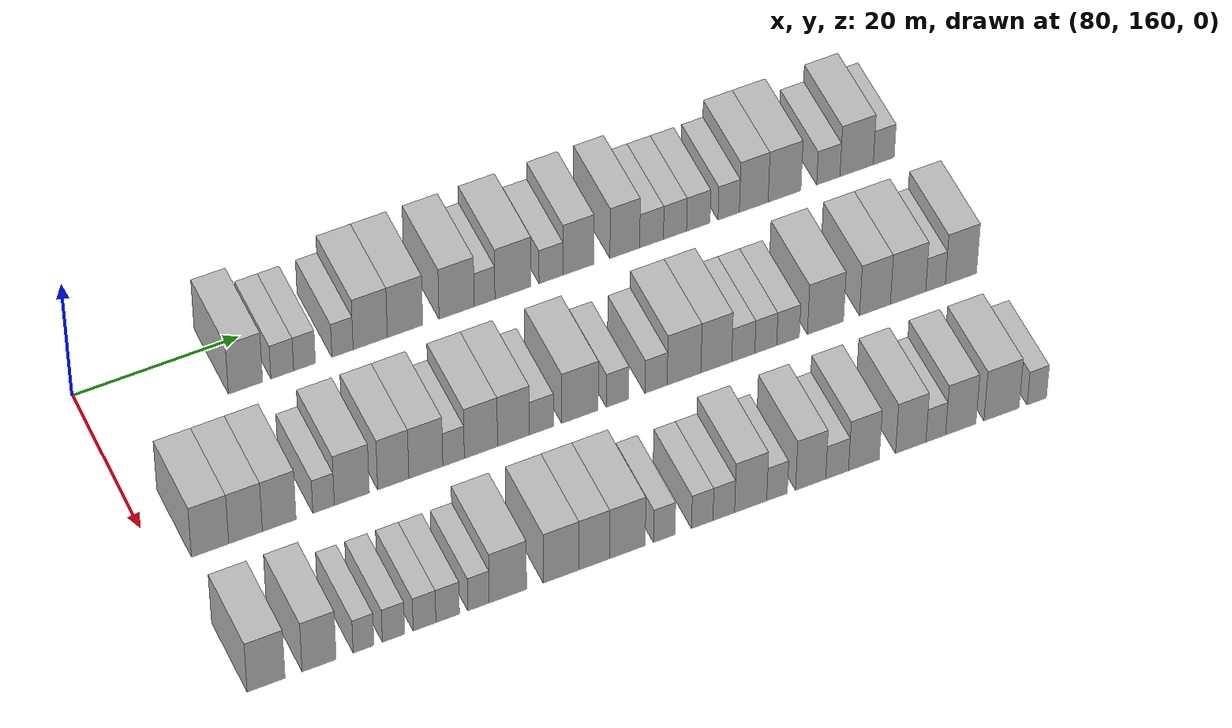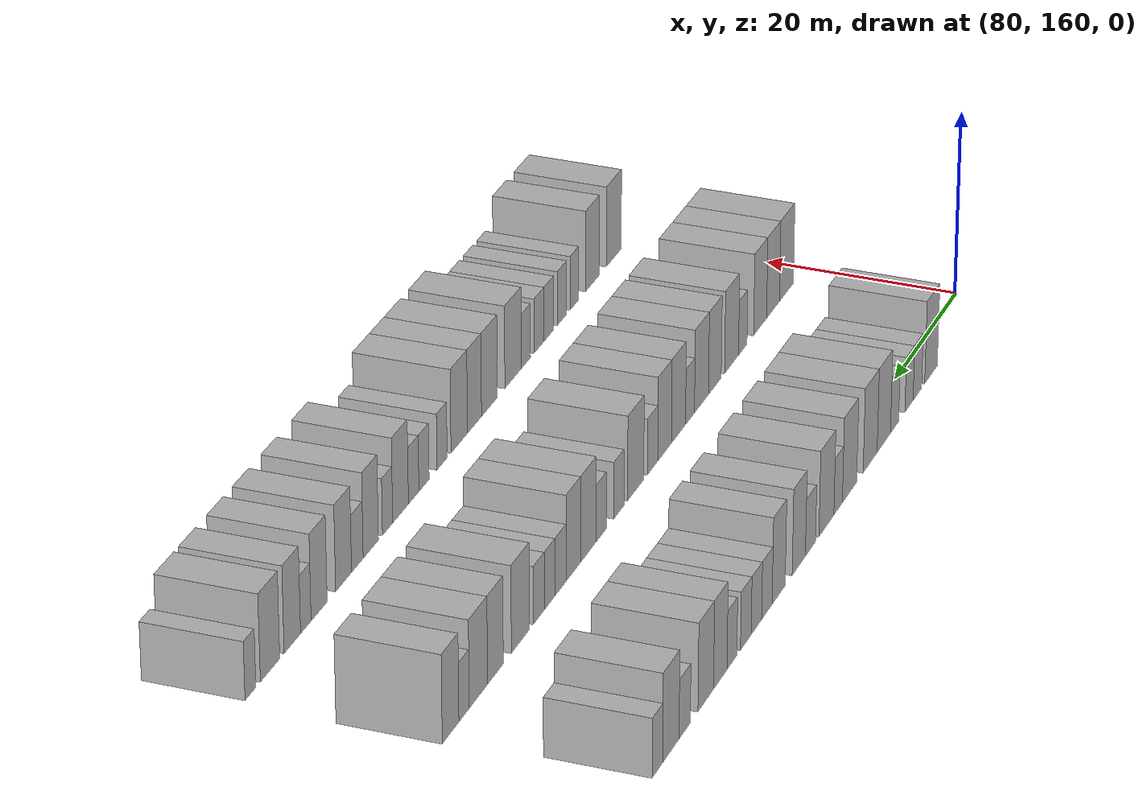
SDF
<sdf version="1.6">
 <world name="default">
  <model name="building_655">
   <static>1</static>
   <pose>82.0000 177.9695 0 0.000000 0.000000 0.000000</pose>
   <link name="link">
    <pose>0 0 4.50 0 0 0</pose>
    <collision name="collision"><geometry><box><size>10.0000 4.1385 9.0000</size></box></geometry></collision>
    <visual name="visual">
     <cast_shadows>0</cast_shadows>
     <geometry><box><size>10.0000 4.1385 9.0000</size></box></geometry>
     <material>
      <script>
       <uri>model://HANNAS_wall/materials/scripts</uri>
       <uri>model://HANNAS_wall/materials/textures</uri>
       <name>vrc/HANNAS_wall</name>
      </script>
     </material>
    </visual>
   </link>
  </model>
  <model name="building_656">
   <static>1</static>
   <pose>82.0000 182.4189 0 0.000000 0.000000 0.000000</pose>
   <link name="link">
    <pose>0 0 3.00 0 0 0</pose>
    <collision name="collision"><geometry><box><size>10.0000 2.7604 6.0000</size></box></geometry></collision>
    <visual name="visual">
     <cast_shadows>0</cast_shadows>
     <geometry><box><size>10.0000 2.7604 6.0000</size></box></geometry>
     <material>
      <script>
       <uri>model://HANNAS_wall/materials/scripts</uri>
       <uri>model://HANNAS_wall/materials/textures</uri>
       <name>vrc/HANNAS_wall</name>
      </script>
     </material>
    </visual>
   </link>
  </model>
  <model name="building_657">
   <static>1</static>
   <pose>82.0000 185.1187 0 0.000000 0.000000 0.000000</pose>
   <link name="link">
    <pose>0 0 3.00 0 0 0</pose>
    <collision name="collision"><geometry><box><size>10.0000 2.6391 6.0000</size></box></geometry></collision>
    <visual name="visual">
     <cast_shadows>0</cast_shadows>
     <geometry><box><size>10.0000 2.6391 6.0000</size></box></geometry>
     <material>
      <script>
       <uri>model://HANNAS_wall/materials/scripts</uri>
       <uri>model://HANNAS_wall/materials/textures</uri>
       <name>vrc/HANNAS_wall</name>
      </script>
     </material>
    </visual>
   </link>
  </model>
  <model name="building_658">
   <static>1</static>
   <pose>82.0000 189.7355 0 0.000000 0.000000 0.000000</pose>
   <link name="link">
    <pose>0 0 3.00 0 0 0</pose>
    <collision name="collision"><geometry><box><size>10.0000 2.5944 6.0000</size></box></geometry></collision>
    <visual name="visual">
     <cast_shadows>0</cast_shadows>
     <geometry><box><size>10.0000 2.5944 6.0000</size></box></geometry>
     <material>
      <script>
       <uri>model://HANNAS_wall/materials/scripts</uri>
       <uri>model://HANNAS_wall/materials/textures</uri>
       <name>vrc/HANNAS_wall</name>
      </script>
     </material>
    </visual>
   </link>
  </model>
  <model name="building_659">
   <static>1</static>
   <pose>82.0000 193.1261 0 0.000000 0.000000 0.000000</pose>
   <link name="link">
    <pose>0 0 4.50 0 0 0</pose>
    <collision name="collision"><geometry><box><size>10.0000 4.1868 9.0000</size></box></geometry></collision>
    <visual name="visual">
     <cast_shadows>0</cast_shadows>
     <geometry><box><size>10.0000 4.1868 9.0000</size></box></geometry>
     <material>
      <script>
       <uri>model://HANNAS_wall/materials/scripts</uri>
       <uri>model://HANNAS_wall/materials/textures</uri>
       <name>vrc/HANNAS_wall</name>
      </script>
     </material>
    </visual>
   </link>
  </model>
  <model name="building_660">
   <static>1</static>
   <pose>82.0000 197.3798 0 0.000000 0.000000 0.000000</pose>
   <link name="link">
    <pose>0 0 4.50 0 0 0</pose>
    <collision name="collision"><geometry><box><size>10.0000 4.3207 9.0000</size></box></geometry></collision>
    <visual name="visual">
     <cast_shadows>0</cast_shadows>
     <geometry><box><size>10.0000 4.3207 9.0000</size></box></geometry>
     <material>
      <script>
       <uri>model://HANNAS_wall/materials/scripts</uri>
       <uri>model://HANNAS_wall/materials/textures</uri>
       <name>vrc/HANNAS_wall</name>
      </script>
     </material>
    </visual>
   </link>
  </model>
  <model name="building_661">
   <static>1</static>
   <pose>82.0000 203.6996 0 0.000000 0.000000 0.000000</pose>
   <link name="link">
    <pose>0 0 4.50 0 0 0</pose>
    <collision name="collision"><geometry><box><size>10.0000 4.3188 9.0000</size></box></geometry></collision>
    <visual name="visual">
     <cast_shadows>0</cast_shadows>
     <geometry><box><size>10.0000 4.3188 9.0000</size></box></geometry>
     <material>
      <script>
       <uri>model://HANNAS_wall/materials/scripts</uri>
       <uri>model://HANNAS_wall/materials/textures</uri>
       <name>vrc/HANNAS_wall</name>
      </script>
     </material>
    </visual>
   </link>
  </model>
  <model name="building_662">
   <static>1</static>
   <pose>82.0000 207.1368 0 0.000000 0.000000 0.000000</pose>
   <link name="link">
    <pose>0 0 3.00 0 0 0</pose>
    <collision name="collision"><geometry><box><size>10.0000 2.5557 6.0000</size></box></geometry></collision>
    <visual name="visual">
     <cast_shadows>0</cast_shadows>
     <geometry><box><size>10.0000 2.5557 6.0000</size></box></geometry>
     <material>
      <script>
       <uri>model://HANNAS_wall/materials/scripts</uri>
       <uri>model://HANNAS_wall/materials/textures</uri>
       <name>vrc/HANNAS_wall</name>
      </script>
     </material>
    </visual>
   </link>
  </model>
  <model name="building_663">
   <static>1</static>
   <pose>82.0000 210.6408 0 0.000000 0.000000 0.000000</pose>
   <link name="link">
    <pose>0 0 4.50 0 0 0</pose>
    <collision name="collision"><geometry><box><size>10.0000 4.4524 9.0000</size></box></geometry></collision>
    <visual name="visual">
     <cast_shadows>0</cast_shadows>
     <geometry><box><size>10.0000 4.4524 9.0000</size></box></geometry>
     <material>
      <script>
       <uri>model://HANNAS_wall/materials/scripts</uri>
       <uri>model://HANNAS_wall/materials/textures</uri>
       <name>vrc/HANNAS_wall</name>
      </script>
     </material>
    </visual>
   </link>
  </model>
  <model name="building_664">
   <static>1</static>
   <pose>82.0000 215.3456 0 0.000000 0.000000 0.000000</pose>
   <link name="link">
    <pose>0 0 3.00 0 0 0</pose>
    <collision name="collision"><geometry><box><size>10.0000 2.9572 6.0000</size></box></geometry></collision>
    <visual name="visual">
     <cast_shadows>0</cast_shadows>
     <geometry><box><size>10.0000 2.9572 6.0000</size></box></geometry>
     <material>
      <script>
       <uri>model://HANNAS_wall/materials/scripts</uri>
       <uri>model://HANNAS_wall/materials/textures</uri>
       <name>vrc/HANNAS_wall</name>
      </script>
     </material>
    </visual>
   </link>
  </model>
  <model name="building_665">
   <static>1</static>
   <pose>82.0000 218.7433 0 0.000000 0.000000 0.000000</pose>
   <link name="link">
    <pose>0 0 4.50 0 0 0</pose>
    <collision name="collision"><geometry><box><size>10.0000 3.8381 9.0000</size></box></geometry></collision>
    <visual name="visual">
     <cast_shadows>0</cast_shadows>
     <geometry><box><size>10.0000 3.8381 9.0000</size></box></geometry>
     <material>
      <script>
       <uri>model://HANNAS_wall/materials/scripts</uri>
       <uri>model://HANNAS_wall/materials/textures</uri>
       <name>vrc/HANNAS_wall</name>
      </script>
     </material>
    </visual>
   </link>
  </model>
  <model name="building_666">
   <static>1</static>
   <pose>82.0000 224.5150 0 0.000000 0.000000 0.000000</pose>
   <link name="link">
    <pose>0 0 4.50 0 0 0</pose>
    <collision name="collision"><geometry><box><size>10.0000 3.7053 9.0000</size></box></geometry></collision>
    <visual name="visual">
     <cast_shadows>0</cast_shadows>
     <geometry><box><size>10.0000 3.7053 9.0000</size></box></geometry>
     <material>
      <script>
       <uri>model://HANNAS_wall/materials/scripts</uri>
       <uri>model://HANNAS_wall/materials/textures</uri>
       <name>vrc/HANNAS_wall</name>
      </script>
     </material>
    </visual>
   </link>
  </model>
  <model name="building_667">
   <static>1</static>
   <pose>82.0000 227.8535 0 0.000000 0.000000 0.000000</pose>
   <link name="link">
    <pose>0 0 3.00 0 0 0</pose>
    <collision name="collision"><geometry><box><size>10.0000 2.9717 6.0000</size></box></geometry></collision>
    <visual name="visual">
     <cast_shadows>0</cast_shadows>
     <geometry><box><size>10.0000 2.9717 6.0000</size></box></geometry>
     <material>
      <script>
       <uri>model://HANNAS_wall/materials/scripts</uri>
       <uri>model://HANNAS_wall/materials/textures</uri>
       <name>vrc/HANNAS_wall</name>
      </script>
     </material>
    </visual>
   </link>
  </model>
  <model name="building_668">
   <static>1</static>
   <pose>82.0000 230.7894 0 0.000000 0.000000 0.000000</pose>
   <link name="link">
    <pose>0 0 3.00 0 0 0</pose>
    <collision name="collision"><geometry><box><size>10.0000 2.9001 6.0000</size></box></geometry></collision>
    <visual name="visual">
     <cast_shadows>0</cast_shadows>
     <geometry><box><size>10.0000 2.9001 6.0000</size></box></geometry>
     <material>
      <script>
       <uri>model://HANNAS_wall/materials/scripts</uri>
       <uri>model://HANNAS_wall/materials/textures</uri>
       <name>vrc/HANNAS_wall</name>
      </script>
     </material>
    </visual>
   </link>
  </model>
  <model name="building_669">
   <static>1</static>
   <pose>82.0000 233.7119 0 0.000000 0.000000 0.000000</pose>
   <link name="link">
    <pose>0 0 3.00 0 0 0</pose>
    <collision name="collision"><geometry><box><size>10.0000 2.9449 6.0000</size></box></geometry></collision>
    <visual name="visual">
     <cast_shadows>0</cast_shadows>
     <geometry><box><size>10.0000 2.9449 6.0000</size></box></geometry>
     <material>
      <script>
       <uri>model://HANNAS_wall/materials/scripts</uri>
       <uri>model://HANNAS_wall/materials/textures</uri>
       <name>vrc/HANNAS_wall</name>
      </script>
     </material>
    </visual>
   </link>
  </model>
  <model name="building_670">
   <static>1</static>
   <pose>82.0000 237.5226 0 0.000000 0.000000 0.000000</pose>
   <link name="link">
    <pose>0 0 3.00 0 0 0</pose>
    <collision name="collision"><geometry><box><size>10.0000 2.6765 6.0000</size></box></geometry></collision>
    <visual name="visual">
     <cast_shadows>0</cast_shadows>
     <geometry><box><size>10.0000 2.6765 6.0000</size></box></geometry>
     <material>
      <script>
       <uri>model://HANNAS_wall/materials/scripts</uri>
       <uri>model://HANNAS_wall/materials/textures</uri>
       <name>vrc/HANNAS_wall</name>
      </script>
     </material>
    </visual>
   </link>
  </model>
  <model name="building_671">
   <static>1</static>
   <pose>82.0000 240.6766 0 0.000000 0.000000 0.000000</pose>
   <link name="link">
    <pose>0 0 4.50 0 0 0</pose>
    <collision name="collision"><geometry><box><size>10.0000 3.6316 9.0000</size></box></geometry></collision>
    <visual name="visual">
     <cast_shadows>0</cast_shadows>
     <geometry><box><size>10.0000 3.6316 9.0000</size></box></geometry>
     <material>
      <script>
       <uri>model://HANNAS_wall/materials/scripts</uri>
       <uri>model://HANNAS_wall/materials/textures</uri>
       <name>vrc/HANNAS_wall</name>
      </script>
     </material>
    </visual>
   </link>
  </model>
  <model name="building_672">
   <static>1</static>
   <pose>82.0000 244.5646 0 0.000000 0.000000 0.000000</pose>
   <link name="link">
    <pose>0 0 4.50 0 0 0</pose>
    <collision name="collision"><geometry><box><size>10.0000 4.1444 9.0000</size></box></geometry></collision>
    <visual name="visual">
     <cast_shadows>0</cast_shadows>
     <geometry><box><size>10.0000 4.1444 9.0000</size></box></geometry>
     <material>
      <script>
       <uri>model://HANNAS_wall/materials/scripts</uri>
       <uri>model://HANNAS_wall/materials/textures</uri>
       <name>vrc/HANNAS_wall</name>
      </script>
     </material>
    </visual>
   </link>
  </model>
  <model name="building_673">
   <static>1</static>
   <pose>82.0000 250.1136 0 0.000000 0.000000 0.000000</pose>
   <link name="link">
    <pose>0 0 3.00 0 0 0</pose>
    <collision name="collision"><geometry><box><size>10.0000 2.9536 6.0000</size></box></geometry></collision>
    <visual name="visual">
     <cast_shadows>0</cast_shadows>
     <geometry><box><size>10.0000 2.9536 6.0000</size></box></geometry>
     <material>
      <script>
       <uri>model://HANNAS_wall/materials/scripts</uri>
       <uri>model://HANNAS_wall/materials/textures</uri>
       <name>vrc/HANNAS_wall</name>
      </script>
     </material>
    </visual>
   </link>
  </model>
  <model name="building_674">
   <static>1</static>
   <pose>82.0000 253.7051 0 0.000000 0.000000 0.000000</pose>
   <link name="link">
    <pose>0 0 4.50 0 0 0</pose>
    <collision name="collision"><geometry><box><size>10.0000 4.2295 9.0000</size></box></geometry></collision>
    <visual name="visual">
     <cast_shadows>0</cast_shadows>
     <geometry><box><size>10.0000 4.2295 9.0000</size></box></geometry>
     <material>
      <script>
       <uri>model://HANNAS_wall/materials/scripts</uri>
       <uri>model://HANNAS_wall/materials/textures</uri>
       <name>vrc/HANNAS_wall</name>
      </script>
     </material>
    </visual>
   </link>
  </model>
  <model name="building_675">
   <static>1</static>
   <pose>82.0000 257.1515 0 0.000000 0.000000 0.000000</pose>
   <link name="link">
    <pose>0 0 3.00 0 0 0</pose>
    <collision name="collision"><geometry><box><size>10.0000 2.6634 6.0000</size></box></geometry></collision>
    <visual name="visual">
     <cast_shadows>0</cast_shadows>
     <geometry><box><size>10.0000 2.6634 6.0000</size></box></geometry>
     <material>
      <script>
       <uri>model://HANNAS_wall/materials/scripts</uri>
       <uri>model://HANNAS_wall/materials/textures</uri>
       <name>vrc/HANNAS_wall</name>
      </script>
     </material>
    </visual>
   </link>
  </model>
  <model name="building_824">
   <static>1</static>
   <pose>101.0000 165.8462 0 0.000000 0.000000 0.000000</pose>
   <link name="link">
    <pose>0 0 4.50 0 0 0</pose>
    <collision name="collision"><geometry><box><size>10.0000 4.4173 9.0000</size></box></geometry></collision>
    <visual name="visual">
     <cast_shadows>0</cast_shadows>
     <geometry><box><size>10.0000 4.4173 9.0000</size></box></geometry>
     <material>
      <script>
       <uri>model://HANNAS_wall/materials/scripts</uri>
       <uri>model://HANNAS_wall/materials/textures</uri>
       <name>vrc/HANNAS_wall</name>
      </script>
     </material>
    </visual>
   </link>
  </model>
  <model name="building_825">
   <static>1</static>
   <pose>101.0000 170.0521 0 0.000000 0.000000 0.000000</pose>
   <link name="link">
    <pose>0 0 4.50 0 0 0</pose>
    <collision name="collision"><geometry><box><size>10.0000 3.9946 9.0000</size></box></geometry></collision>
    <visual name="visual">
     <cast_shadows>0</cast_shadows>
     <geometry><box><size>10.0000 3.9946 9.0000</size></box></geometry>
     <material>
      <script>
       <uri>model://HANNAS_wall/materials/scripts</uri>
       <uri>model://HANNAS_wall/materials/textures</uri>
       <name>vrc/HANNAS_wall</name>
      </script>
     </material>
    </visual>
   </link>
  </model>
  <model name="building_826">
   <static>1</static>
   <pose>101.0000 174.0549 0 0.000000 0.000000 0.000000</pose>
   <link name="link">
    <pose>0 0 4.50 0 0 0</pose>
    <collision name="collision"><geometry><box><size>10.0000 4.0111 9.0000</size></box></geometry></collision>
    <visual name="visual">
     <cast_shadows>0</cast_shadows>
     <geometry><box><size>10.0000 4.0111 9.0000</size></box></geometry>
     <material>
      <script>
       <uri>model://HANNAS_wall/materials/scripts</uri>
       <uri>model://HANNAS_wall/materials/textures</uri>
       <name>vrc/HANNAS_wall</name>
      </script>
     </material>
    </visual>
   </link>
  </model>
  <model name="building_827">
   <static>1</static>
   <pose>101.0000 179.3477 0 0.000000 0.000000 0.000000</pose>
   <link name="link">
    <pose>0 0 3.00 0 0 0</pose>
    <collision name="collision"><geometry><box><size>10.0000 2.5744 6.0000</size></box></geometry></collision>
    <visual name="visual">
     <cast_shadows>0</cast_shadows>
     <geometry><box><size>10.0000 2.5744 6.0000</size></box></geometry>
     <material>
      <script>
       <uri>model://HANNAS_wall/materials/scripts</uri>
       <uri>model://HANNAS_wall/materials/textures</uri>
       <name>vrc/HANNAS_wall</name>
      </script>
     </material>
    </visual>
   </link>
  </model>
  <model name="building_828">
   <static>1</static>
   <pose>101.0000 182.7299 0 0.000000 0.000000 0.000000</pose>
   <link name="link">
    <pose>0 0 4.50 0 0 0</pose>
    <collision name="collision"><geometry><box><size>10.0000 4.1900 9.0000</size></box></geometry></collision>
    <visual name="visual">
     <cast_shadows>0</cast_shadows>
     <geometry><box><size>10.0000 4.1900 9.0000</size></box></geometry>
     <material>
      <script>
       <uri>model://HANNAS_wall/materials/scripts</uri>
       <uri>model://HANNAS_wall/materials/textures</uri>
       <name>vrc/HANNAS_wall</name>
      </script>
     </material>
    </visual>
   </link>
  </model>
  <model name="building_829">
   <static>1</static>
   <pose>101.0000 187.6996 0 0.000000 0.000000 0.000000</pose>
   <link name="link">
    <pose>0 0 4.50 0 0 0</pose>
    <collision name="collision"><geometry><box><size>10.0000 3.7494 9.0000</size></box></geometry></collision>
    <visual name="visual">
     <cast_shadows>0</cast_shadows>
     <geometry><box><size>10.0000 3.7494 9.0000</size></box></geometry>
     <material>
      <script>
       <uri>model://HANNAS_wall/materials/scripts</uri>
       <uri>model://HANNAS_wall/materials/textures</uri>
       <name>vrc/HANNAS_wall</name>
      </script>
     </material>
    </visual>
   </link>
  </model>
  <model name="building_830">
   <static>1</static>
   <pose>101.0000 191.6218 0 0.000000 0.000000 0.000000</pose>
   <link name="link">
    <pose>0 0 4.50 0 0 0</pose>
    <collision name="collision"><geometry><box><size>10.0000 4.0949 9.0000</size></box></geometry></collision>
    <visual name="visual">
     <cast_shadows>0</cast_shadows>
     <geometry><box><size>10.0000 4.0949 9.0000</size></box></geometry>
     <material>
      <script>
       <uri>model://HANNAS_wall/materials/scripts</uri>
       <uri>model://HANNAS_wall/materials/textures</uri>
       <name>vrc/HANNAS_wall</name>
      </script>
     </material>
    </visual>
   </link>
  </model>
  <model name="building_831">
   <static>1</static>
   <pose>101.0000 194.9651 0 0.000000 0.000000 0.000000</pose>
   <link name="link">
    <pose>0 0 3.00 0 0 0</pose>
    <collision name="collision"><geometry><box><size>10.0000 2.5917 6.0000</size></box></geometry></collision>
    <visual name="visual">
     <cast_shadows>0</cast_shadows>
     <geometry><box><size>10.0000 2.5917 6.0000</size></box></geometry>
     <material>
      <script>
       <uri>model://HANNAS_wall/materials/scripts</uri>
       <uri>model://HANNAS_wall/materials/textures</uri>
       <name>vrc/HANNAS_wall</name>
      </script>
     </material>
    </visual>
   </link>
  </model>
  <model name="building_832">
   <static>1</static>
   <pose>101.0000 198.2716 0 0.000000 0.000000 0.000000</pose>
   <link name="link">
    <pose>0 0 4.50 0 0 0</pose>
    <collision name="collision"><geometry><box><size>10.0000 4.0214 9.0000</size></box></geometry></collision>
    <visual name="visual">
     <cast_shadows>0</cast_shadows>
     <geometry><box><size>10.0000 4.0214 9.0000</size></box></geometry>
     <material>
      <script>
       <uri>model://HANNAS_wall/materials/scripts</uri>
       <uri>model://HANNAS_wall/materials/textures</uri>
       <name>vrc/HANNAS_wall</name>
      </script>
     </material>
    </visual>
   </link>
  </model>
  <model name="building_833">
   <static>1</static>
   <pose>101.0000 202.2206 0 0.000000 0.000000 0.000000</pose>
   <link name="link">
    <pose>0 0 4.50 0 0 0</pose>
    <collision name="collision"><geometry><box><size>10.0000 3.8765 9.0000</size></box></geometry></collision>
    <visual name="visual">
     <cast_shadows>0</cast_shadows>
     <geometry><box><size>10.0000 3.8765 9.0000</size></box></geometry>
     <material>
      <script>
       <uri>model://HANNAS_wall/materials/scripts</uri>
       <uri>model://HANNAS_wall/materials/textures</uri>
       <name>vrc/HANNAS_wall</name>
      </script>
     </material>
    </visual>
   </link>
  </model>
  <model name="building_834">
   <static>1</static>
   <pose>101.0000 205.6199 0 0.000000 0.000000 0.000000</pose>
   <link name="link">
    <pose>0 0 3.00 0 0 0</pose>
    <collision name="collision"><geometry><box><size>10.0000 2.9221 6.0000</size></box></geometry></collision>
    <visual name="visual">
     <cast_shadows>0</cast_shadows>
     <geometry><box><size>10.0000 2.9221 6.0000</size></box></geometry>
     <material>
      <script>
       <uri>model://HANNAS_wall/materials/scripts</uri>
       <uri>model://HANNAS_wall/materials/textures</uri>
       <name>vrc/HANNAS_wall</name>
      </script>
     </material>
    </visual>
   </link>
  </model>
  <model name="building_835">
   <static>1</static>
   <pose>101.0000 210.3074 0 0.000000 0.000000 0.000000</pose>
   <link name="link">
    <pose>0 0 4.50 0 0 0</pose>
    <collision name="collision"><geometry><box><size>10.0000 4.4530 9.0000</size></box></geometry></collision>
    <visual name="visual">
     <cast_shadows>0</cast_shadows>
     <geometry><box><size>10.0000 4.4530 9.0000</size></box></geometry>
     <material>
      <script>
       <uri>model://HANNAS_wall/materials/scripts</uri>
       <uri>model://HANNAS_wall/materials/textures</uri>
       <name>vrc/HANNAS_wall</name>
      </script>
     </material>
    </visual>
   </link>
  </model>
  <model name="building_836">
   <static>1</static>
   <pose>101.0000 214.9007 0 0.000000 0.000000 0.000000</pose>
   <link name="link">
    <pose>0 0 3.00 0 0 0</pose>
    <collision name="collision"><geometry><box><size>10.0000 2.7336 6.0000</size></box></geometry></collision>
    <visual name="visual">
     <cast_shadows>0</cast_shadows>
     <geometry><box><size>10.0000 2.7336 6.0000</size></box></geometry>
     <material>
      <script>
       <uri>model://HANNAS_wall/materials/scripts</uri>
       <uri>model://HANNAS_wall/materials/textures</uri>
       <name>vrc/HANNAS_wall</name>
      </script>
     </material>
    </visual>
   </link>
  </model>
  <model name="building_837">
   <static>1</static>
   <pose>101.0000 219.6294 0 0.000000 0.000000 0.000000</pose>
   <link name="link">
    <pose>0 0 3.00 0 0 0</pose>
    <collision name="collision"><geometry><box><size>10.0000 2.7238 6.0000</size></box></geometry></collision>
    <visual name="visual">
     <cast_shadows>0</cast_shadows>
     <geometry><box><size>10.0000 2.7238 6.0000</size></box></geometry>
     <material>
      <script>
       <uri>model://HANNAS_wall/materials/scripts</uri>
       <uri>model://HANNAS_wall/materials/textures</uri>
       <name>vrc/HANNAS_wall</name>
      </script>
     </material>
    </visual>
   </link>
  </model>
  <model name="building_838">
   <static>1</static>
   <pose>101.0000 223.0688 0 0.000000 0.000000 0.000000</pose>
   <link name="link">
    <pose>0 0 4.50 0 0 0</pose>
    <collision name="collision"><geometry><box><size>10.0000 4.1552 9.0000</size></box></geometry></collision>
    <visual name="visual">
     <cast_shadows>0</cast_shadows>
     <geometry><box><size>10.0000 4.1552 9.0000</size></box></geometry>
     <material>
      <script>
       <uri>model://HANNAS_wall/materials/scripts</uri>
       <uri>model://HANNAS_wall/materials/textures</uri>
       <name>vrc/HANNAS_wall</name>
      </script>
     </material>
    </visual>
   </link>
  </model>
  <model name="building_839">
   <static>1</static>
   <pose>101.0000 227.0503 0 0.000000 0.000000 0.000000</pose>
   <link name="link">
    <pose>0 0 4.50 0 0 0</pose>
    <collision name="collision"><geometry><box><size>10.0000 3.8078 9.0000</size></box></geometry></collision>
    <visual name="visual">
     <cast_shadows>0</cast_shadows>
     <geometry><box><size>10.0000 3.8078 9.0000</size></box></geometry>
     <material>
      <script>
       <uri>model://HANNAS_wall/materials/scripts</uri>
       <uri>model://HANNAS_wall/materials/textures</uri>
       <name>vrc/HANNAS_wall</name>
      </script>
     </material>
    </visual>
   </link>
  </model>
  <model name="building_840">
   <static>1</static>
   <pose>101.0000 230.3859 0 0.000000 0.000000 0.000000</pose>
   <link name="link">
    <pose>0 0 3.00 0 0 0</pose>
    <collision name="collision"><geometry><box><size>10.0000 2.8635 6.0000</size></box></geometry></collision>
    <visual name="visual">
     <cast_shadows>0</cast_shadows>
     <geometry><box><size>10.0000 2.8635 6.0000</size></box></geometry>
     <material>
      <script>
       <uri>model://HANNAS_wall/materials/scripts</uri>
       <uri>model://HANNAS_wall/materials/textures</uri>
       <name>vrc/HANNAS_wall</name>
      </script>
     </material>
    </visual>
   </link>
  </model>
  <model name="building_841">
   <static>1</static>
   <pose>101.0000 233.1712 0 0.000000 0.000000 0.000000</pose>
   <link name="link">
    <pose>0 0 3.00 0 0 0</pose>
    <collision name="collision"><geometry><box><size>10.0000 2.7071 6.0000</size></box></geometry></collision>
    <visual name="visual">
     <cast_shadows>0</cast_shadows>
     <geometry><box><size>10.0000 2.7071 6.0000</size></box></geometry>
     <material>
      <script>
       <uri>model://HANNAS_wall/materials/scripts</uri>
       <uri>model://HANNAS_wall/materials/textures</uri>
       <name>vrc/HANNAS_wall</name>
      </script>
     </material>
    </visual>
   </link>
  </model>
  <model name="building_842">
   <static>1</static>
   <pose>101.0000 235.9362 0 0.000000 0.000000 0.000000</pose>
   <link name="link">
    <pose>0 0 3.00 0 0 0</pose>
    <collision name="collision"><geometry><box><size>10.0000 2.8228 6.0000</size></box></geometry></collision>
    <visual name="visual">
     <cast_shadows>0</cast_shadows>
     <geometry><box><size>10.0000 2.8228 6.0000</size></box></geometry>
     <material>
      <script>
       <uri>model://HANNAS_wall/materials/scripts</uri>
       <uri>model://HANNAS_wall/materials/textures</uri>
       <name>vrc/HANNAS_wall</name>
      </script>
     </material>
    </visual>
   </link>
  </model>
  <model name="building_843">
   <static>1</static>
   <pose>101.0000 240.5971 0 0.000000 0.000000 0.000000</pose>
   <link name="link">
    <pose>0 0 4.50 0 0 0</pose>
    <collision name="collision"><geometry><box><size>10.0000 4.4989 9.0000</size></box></geometry></collision>
    <visual name="visual">
     <cast_shadows>0</cast_shadows>
     <geometry><box><size>10.0000 4.4989 9.0000</size></box></geometry>
     <material>
      <script>
       <uri>model://HANNAS_wall/materials/scripts</uri>
       <uri>model://HANNAS_wall/materials/textures</uri>
       <name>vrc/HANNAS_wall</name>
      </script>
     </material>
    </visual>
   </link>
  </model>
  <model name="building_844">
   <static>1</static>
   <pose>101.0000 246.7779 0 0.000000 0.000000 0.000000</pose>
   <link name="link">
    <pose>0 0 4.50 0 0 0</pose>
    <collision name="collision"><geometry><box><size>10.0000 3.8628 9.0000</size></box></geometry></collision>
    <visual name="visual">
     <cast_shadows>0</cast_shadows>
     <geometry><box><size>10.0000 3.8628 9.0000</size></box></geometry>
     <material>
      <script>
       <uri>model://HANNAS_wall/materials/scripts</uri>
       <uri>model://HANNAS_wall/materials/textures</uri>
       <name>vrc/HANNAS_wall</name>
      </script>
     </material>
    </visual>
   </link>
  </model>
  <model name="building_845">
   <static>1</static>
   <pose>101.0000 250.9268 0 0.000000 0.000000 0.000000</pose>
   <link name="link">
    <pose>0 0 4.50 0 0 0</pose>
    <collision name="collision"><geometry><box><size>10.0000 4.4350 9.0000</size></box></geometry></collision>
    <visual name="visual">
     <cast_shadows>0</cast_shadows>
     <geometry><box><size>10.0000 4.4350 9.0000</size></box></geometry>
     <material>
      <script>
       <uri>model://HANNAS_wall/materials/scripts</uri>
       <uri>model://HANNAS_wall/materials/textures</uri>
       <name>vrc/HANNAS_wall</name>
      </script>
     </material>
    </visual>
   </link>
  </model>
  <model name="building_846">
   <static>1</static>
   <pose>101.0000 254.3762 0 0.000000 0.000000 0.000000</pose>
   <link name="link">
    <pose>0 0 3.00 0 0 0</pose>
    <collision name="collision"><geometry><box><size>10.0000 2.4638 6.0000</size></box></geometry></collision>
    <visual name="visual">
     <cast_shadows>0</cast_shadows>
     <geometry><box><size>10.0000 2.4638 6.0000</size></box></geometry>
     <material>
      <script>
       <uri>model://HANNAS_wall/materials/scripts</uri>
       <uri>model://HANNAS_wall/materials/textures</uri>
       <name>vrc/HANNAS_wall</name>
      </script>
     </material>
    </visual>
   </link>
  </model>
  <model name="building_847">
   <static>1</static>
   <pose>101.0000 257.5766 0 0.000000 0.000000 0.000000</pose>
   <link name="link">
    <pose>0 0 4.50 0 0 0</pose>
    <collision name="collision"><geometry><box><size>10.0000 3.9369 9.0000</size></box></geometry></collision>
    <visual name="visual">
     <cast_shadows>0</cast_shadows>
     <geometry><box><size>10.0000 3.9369 9.0000</size></box></geometry>
     <material>
      <script>
       <uri>model://HANNAS_wall/materials/scripts</uri>
       <uri>model://HANNAS_wall/materials/textures</uri>
       <name>vrc/HANNAS_wall</name>
      </script>
     </material>
    </visual>
   </link>
  </model>
  <model name="building_1000">
   <static>1</static>
   <pose>120.0000 164.5171 0 0.000000 0.000000 0.000000</pose>
   <link name="link">
    <pose>0 0 4.50 0 0 0</pose>
    <collision name="collision"><geometry><box><size>10.0000 4.4377 9.0000</size></box></geometry></collision>
    <visual name="visual">
     <cast_shadows>0</cast_shadows>
     <geometry><box><size>10.0000 4.4377 9.0000</size></box></geometry>
     <material>
      <script>
       <uri>model://HANNAS_wall/materials/scripts</uri>
       <uri>model://HANNAS_wall/materials/textures</uri>
       <name>vrc/HANNAS_wall</name>
      </script>
     </material>
    </visual>
   </link>
  </model>
  <model name="building_1001">
   <static>1</static>
   <pose>120.0000 170.7343 0 0.000000 0.000000 0.000000</pose>
   <link name="link">
    <pose>0 0 4.50 0 0 0</pose>
    <collision name="collision"><geometry><box><size>10.0000 3.9967 9.0000</size></box></geometry></collision>
    <visual name="visual">
     <cast_shadows>0</cast_shadows>
     <geometry><box><size>10.0000 3.9967 9.0000</size></box></geometry>
     <material>
      <script>
       <uri>model://HANNAS_wall/materials/scripts</uri>
       <uri>model://HANNAS_wall/materials/textures</uri>
       <name>vrc/HANNAS_wall</name>
      </script>
     </material>
    </visual>
   </link>
  </model>
  <model name="building_1002">
   <static>1</static>
   <pose>120.0000 175.9554 0 0.000000 0.000000 0.000000</pose>
   <link name="link">
    <pose>0 0 3.00 0 0 0</pose>
    <collision name="collision"><geometry><box><size>10.0000 2.4456 6.0000</size></box></geometry></collision>
    <visual name="visual">
     <cast_shadows>0</cast_shadows>
     <geometry><box><size>10.0000 2.4456 6.0000</size></box></geometry>
     <material>
      <script>
       <uri>model://HANNAS_wall/materials/scripts</uri>
       <uri>model://HANNAS_wall/materials/textures</uri>
       <name>vrc/HANNAS_wall</name>
      </script>
     </material>
    </visual>
   </link>
  </model>
  <model name="building_1003">
   <static>1</static>
   <pose>120.0000 179.4972 0 0.000000 0.000000 0.000000</pose>
   <link name="link">
    <pose>0 0 3.00 0 0 0</pose>
    <collision name="collision"><geometry><box><size>10.0000 2.6381 6.0000</size></box></geometry></collision>
    <visual name="visual">
     <cast_shadows>0</cast_shadows>
     <geometry><box><size>10.0000 2.6381 6.0000</size></box></geometry>
     <material>
      <script>
       <uri>model://HANNAS_wall/materials/scripts</uri>
       <uri>model://HANNAS_wall/materials/textures</uri>
       <name>vrc/HANNAS_wall</name>
      </script>
     </material>
    </visual>
   </link>
  </model>
  <model name="building_1004">
   <static>1</static>
   <pose>120.0000 183.1628 0 0.000000 0.000000 0.000000</pose>
   <link name="link">
    <pose>0 0 3.00 0 0 0</pose>
    <collision name="collision"><geometry><box><size>10.0000 2.6931 6.0000</size></box></geometry></collision>
    <visual name="visual">
     <cast_shadows>0</cast_shadows>
     <geometry><box><size>10.0000 2.6931 6.0000</size></box></geometry>
     <material>
      <script>
       <uri>model://HANNAS_wall/materials/scripts</uri>
       <uri>model://HANNAS_wall/materials/textures</uri>
       <name>vrc/HANNAS_wall</name>
      </script>
     </material>
    </visual>
   </link>
  </model>
  <model name="building_1005">
   <static>1</static>
   <pose>120.0000 185.9048 0 0.000000 0.000000 0.000000</pose>
   <link name="link">
    <pose>0 0 3.00 0 0 0</pose>
    <collision name="collision"><geometry><box><size>10.0000 2.7908 6.0000</size></box></geometry></collision>
    <visual name="visual">
     <cast_shadows>0</cast_shadows>
     <geometry><box><size>10.0000 2.7908 6.0000</size></box></geometry>
     <material>
      <script>
       <uri>model://HANNAS_wall/materials/scripts</uri>
       <uri>model://HANNAS_wall/materials/textures</uri>
       <name>vrc/HANNAS_wall</name>
      </script>
     </material>
    </visual>
   </link>
  </model>
  <model name="building_1006">
   <static>1</static>
   <pose>120.0000 189.5731 0 0.000000 0.000000 0.000000</pose>
   <link name="link">
    <pose>0 0 3.00 0 0 0</pose>
    <collision name="collision"><geometry><box><size>10.0000 2.5456 6.0000</size></box></geometry></collision>
    <visual name="visual">
     <cast_shadows>0</cast_shadows>
     <geometry><box><size>10.0000 2.5456 6.0000</size></box></geometry>
     <material>
      <script>
       <uri>model://HANNAS_wall/materials/scripts</uri>
       <uri>model://HANNAS_wall/materials/textures</uri>
       <name>vrc/HANNAS_wall</name>
      </script>
     </material>
    </visual>
   </link>
  </model>
  <model name="building_1007">
   <static>1</static>
   <pose>120.0000 193.0684 0 0.000000 0.000000 0.000000</pose>
   <link name="link">
    <pose>0 0 4.50 0 0 0</pose>
    <collision name="collision"><geometry><box><size>10.0000 4.4450 9.0000</size></box></geometry></collision>
    <visual name="visual">
     <cast_shadows>0</cast_shadows>
     <geometry><box><size>10.0000 4.4450 9.0000</size></box></geometry>
     <material>
      <script>
       <uri>model://HANNAS_wall/materials/scripts</uri>
       <uri>model://HANNAS_wall/materials/textures</uri>
       <name>vrc/HANNAS_wall</name>
      </script>
     </material>
    </visual>
   </link>
  </model>
  <model name="building_1008">
   <static>1</static>
   <pose>120.0000 199.4192 0 0.000000 0.000000 0.000000</pose>
   <link name="link">
    <pose>0 0 4.50 0 0 0</pose>
    <collision name="collision"><geometry><box><size>10.0000 4.2566 9.0000</size></box></geometry></collision>
    <visual name="visual">
     <cast_shadows>0</cast_shadows>
     <geometry><box><size>10.0000 4.2566 9.0000</size></box></geometry>
     <material>
      <script>
       <uri>model://HANNAS_wall/materials/scripts</uri>
       <uri>model://HANNAS_wall/materials/textures</uri>
       <name>vrc/HANNAS_wall</name>
      </script>
     </material>
    </visual>
   </link>
  </model>
  <model name="building_1009">
   <static>1</static>
   <pose>120.0000 203.3925 0 0.000000 0.000000 0.000000</pose>
   <link name="link">
    <pose>0 0 4.50 0 0 0</pose>
    <collision name="collision"><geometry><box><size>10.0000 3.6900 9.0000</size></box></geometry></collision>
    <visual name="visual">
     <cast_shadows>0</cast_shadows>
     <geometry><box><size>10.0000 3.6900 9.0000</size></box></geometry>
     <material>
      <script>
       <uri>model://HANNAS_wall/materials/scripts</uri>
       <uri>model://HANNAS_wall/materials/textures</uri>
       <name>vrc/HANNAS_wall</name>
      </script>
     </material>
    </visual>
   </link>
  </model>
  <model name="building_1010">
   <static>1</static>
   <pose>120.0000 207.3870 0 0.000000 0.000000 0.000000</pose>
   <link name="link">
    <pose>0 0 4.50 0 0 0</pose>
    <collision name="collision"><geometry><box><size>10.0000 4.2989 9.0000</size></box></geometry></collision>
    <visual name="visual">
     <cast_shadows>0</cast_shadows>
     <geometry><box><size>10.0000 4.2989 9.0000</size></box></geometry>
     <material>
      <script>
       <uri>model://HANNAS_wall/materials/scripts</uri>
       <uri>model://HANNAS_wall/materials/textures</uri>
       <name>vrc/HANNAS_wall</name>
      </script>
     </material>
    </visual>
   </link>
  </model>
  <model name="building_1011">
   <static>1</static>
   <pose>120.0000 211.8375 0 0.000000 0.000000 0.000000</pose>
   <link name="link">
    <pose>0 0 3.00 0 0 0</pose>
    <collision name="collision"><geometry><box><size>10.0000 2.6021 6.0000</size></box></geometry></collision>
    <visual name="visual">
     <cast_shadows>0</cast_shadows>
     <geometry><box><size>10.0000 2.6021 6.0000</size></box></geometry>
     <material>
      <script>
       <uri>model://HANNAS_wall/materials/scripts</uri>
       <uri>model://HANNAS_wall/materials/textures</uri>
       <name>vrc/HANNAS_wall</name>
      </script>
     </material>
    </visual>
   </link>
  </model>
  <model name="building_1012">
   <static>1</static>
   <pose>120.0000 216.4359 0 0.000000 0.000000 0.000000</pose>
   <link name="link">
    <pose>0 0 3.00 0 0 0</pose>
    <collision name="collision"><geometry><box><size>10.0000 2.5948 6.0000</size></box></geometry></collision>
    <visual name="visual">
     <cast_shadows>0</cast_shadows>
     <geometry><box><size>10.0000 2.5948 6.0000</size></box></geometry>
     <material>
      <script>
       <uri>model://HANNAS_wall/materials/scripts</uri>
       <uri>model://HANNAS_wall/materials/textures</uri>
       <name>vrc/HANNAS_wall</name>
      </script>
     </material>
    </visual>
   </link>
  </model>
  <model name="building_1013">
   <static>1</static>
   <pose>120.0000 219.0464 0 0.000000 0.000000 0.000000</pose>
   <link name="link">
    <pose>0 0 3.00 0 0 0</pose>
    <collision name="collision"><geometry><box><size>10.0000 2.6263 6.0000</size></box></geometry></collision>
    <visual name="visual">
     <cast_shadows>0</cast_shadows>
     <geometry><box><size>10.0000 2.6263 6.0000</size></box></geometry>
     <material>
      <script>
       <uri>model://HANNAS_wall/materials/scripts</uri>
       <uri>model://HANNAS_wall/materials/textures</uri>
       <name>vrc/HANNAS_wall</name>
      </script>
     </material>
    </visual>
   </link>
  </model>
  <model name="building_1014">
   <static>1</static>
   <pose>120.0000 222.3153 0 0.000000 0.000000 0.000000</pose>
   <link name="link">
    <pose>0 0 4.50 0 0 0</pose>
    <collision name="collision"><geometry><box><size>10.0000 3.9113 9.0000</size></box></geometry></collision>
    <visual name="visual">
     <cast_shadows>0</cast_shadows>
     <geometry><box><size>10.0000 3.9113 9.0000</size></box></geometry>
     <material>
      <script>
       <uri>model://HANNAS_wall/materials/scripts</uri>
       <uri>model://HANNAS_wall/materials/textures</uri>
       <name>vrc/HANNAS_wall</name>
      </script>
     </material>
    </visual>
   </link>
  </model>
  <model name="building_1015">
   <static>1</static>
   <pose>120.0000 225.5287 0 0.000000 0.000000 0.000000</pose>
   <link name="link">
    <pose>0 0 3.00 0 0 0</pose>
    <collision name="collision"><geometry><box><size>10.0000 2.5156 6.0000</size></box></geometry></collision>
    <visual name="visual">
     <cast_shadows>0</cast_shadows>
     <geometry><box><size>10.0000 2.5156 6.0000</size></box></geometry>
     <material>
      <script>
       <uri>model://HANNAS_wall/materials/scripts</uri>
       <uri>model://HANNAS_wall/materials/textures</uri>
       <name>vrc/HANNAS_wall</name>
      </script>
     </material>
    </visual>
   </link>
  </model>
  <model name="building_1016">
   <static>1</static>
   <pose>120.0000 229.6332 0 0.000000 0.000000 0.000000</pose>
   <link name="link">
    <pose>0 0 4.50 0 0 0</pose>
    <collision name="collision"><geometry><box><size>10.0000 3.6933 9.0000</size></box></geometry></collision>
    <visual name="visual">
     <cast_shadows>0</cast_shadows>
     <geometry><box><size>10.0000 3.6933 9.0000</size></box></geometry>
     <material>
      <script>
       <uri>model://HANNAS_wall/materials/scripts</uri>
       <uri>model://HANNAS_wall/materials/textures</uri>
       <name>vrc/HANNAS_wall</name>
      </script>
     </material>
    </visual>
   </link>
  </model>
  <model name="building_1017">
   <static>1</static>
   <pose>120.0000 232.8794 0 0.000000 0.000000 0.000000</pose>
   <link name="link">
    <pose>0 0 3.00 0 0 0</pose>
    <collision name="collision"><geometry><box><size>10.0000 2.7991 6.0000</size></box></geometry></collision>
    <visual name="visual">
     <cast_shadows>0</cast_shadows>
     <geometry><box><size>10.0000 2.7991 6.0000</size></box></geometry>
     <material>
      <script>
       <uri>model://HANNAS_wall/materials/scripts</uri>
       <uri>model://HANNAS_wall/materials/textures</uri>
       <name>vrc/HANNAS_wall</name>
      </script>
     </material>
    </visual>
   </link>
  </model>
  <model name="building_1018">
   <static>1</static>
   <pose>120.0000 236.1667 0 0.000000 0.000000 0.000000</pose>
   <link name="link">
    <pose>0 0 4.50 0 0 0</pose>
    <collision name="collision"><geometry><box><size>10.0000 3.7755 9.0000</size></box></geometry></collision>
    <visual name="visual">
     <cast_shadows>0</cast_shadows>
     <geometry><box><size>10.0000 3.7755 9.0000</size></box></geometry>
     <material>
      <script>
       <uri>model://HANNAS_wall/materials/scripts</uri>
       <uri>model://HANNAS_wall/materials/textures</uri>
       <name>vrc/HANNAS_wall</name>
      </script>
     </material>
    </visual>
   </link>
  </model>
  <model name="building_1019">
   <static>1</static>
   <pose>120.0000 241.9302 0 0.000000 0.000000 0.000000</pose>
   <link name="link">
    <pose>0 0 4.50 0 0 0</pose>
    <collision name="collision"><geometry><box><size>10.0000 3.7515 9.0000</size></box></geometry></collision>
    <visual name="visual">
     <cast_shadows>0</cast_shadows>
     <geometry><box><size>10.0000 3.7515 9.0000</size></box></geometry>
     <material>
      <script>
       <uri>model://HANNAS_wall/materials/scripts</uri>
       <uri>model://HANNAS_wall/materials/textures</uri>
       <name>vrc/HANNAS_wall</name>
      </script>
     </material>
    </visual>
   </link>
  </model>
  <model name="building_1020">
   <static>1</static>
   <pose>120.0000 245.0214 0 0.000000 0.000000 0.000000</pose>
   <link name="link">
    <pose>0 0 3.00 0 0 0</pose>
    <collision name="collision"><geometry><box><size>10.0000 2.4310 6.0000</size></box></geometry></collision>
    <visual name="visual">
     <cast_shadows>0</cast_shadows>
     <geometry><box><size>10.0000 2.4310 6.0000</size></box></geometry>
     <material>
      <script>
       <uri>model://HANNAS_wall/materials/scripts</uri>
       <uri>model://HANNAS_wall/materials/textures</uri>
       <name>vrc/HANNAS_wall</name>
      </script>
     </material>
    </visual>
   </link>
  </model>
  <model name="building_1021">
   <static>1</static>
   <pose>120.0000 248.1166 0 0.000000 0.000000 0.000000</pose>
   <link name="link">
    <pose>0 0 4.50 0 0 0</pose>
    <collision name="collision"><geometry><box><size>10.0000 3.7595 9.0000</size></box></geometry></collision>
    <visual name="visual">
     <cast_shadows>0</cast_shadows>
     <geometry><box><size>10.0000 3.7595 9.0000</size></box></geometry>
     <material>
      <script>
       <uri>model://HANNAS_wall/materials/scripts</uri>
       <uri>model://HANNAS_wall/materials/textures</uri>
       <name>vrc/HANNAS_wall</name>
      </script>
     </material>
    </visual>
   </link>
  </model>
  <model name="building_1022">
   <static>1</static>
   <pose>120.0000 253.1769 0 0.000000 0.000000 0.000000</pose>
   <link name="link">
    <pose>0 0 4.50 0 0 0</pose>
    <collision name="collision"><geometry><box><size>10.0000 4.3610 9.0000</size></box></geometry></collision>
    <visual name="visual">
     <cast_shadows>0</cast_shadows>
     <geometry><box><size>10.0000 4.3610 9.0000</size></box></geometry>
     <material>
      <script>
       <uri>model://HANNAS_wall/materials/scripts</uri>
       <uri>model://HANNAS_wall/materials/textures</uri>
       <name>vrc/HANNAS_wall</name>
      </script>
     </material>
    </visual>
   </link>
  </model>
  <model name="building_1023">
   <static>1</static>
   <pose>120.0000 257.5590 0 0.000000 0.000000 0.000000</pose>
   <link name="link">
    <pose>0 0 3.00 0 0 0</pose>
    <collision name="collision"><geometry><box><size>10.0000 2.4034 6.0000</size></box></geometry></collision>
    <visual name="visual">
     <cast_shadows>0</cast_shadows>
     <geometry><box><size>10.0000 2.4034 6.0000</size></box></geometry>
     <material>
      <script>
       <uri>model://HANNAS_wall/materials/scripts</uri>
       <uri>model://HANNAS_wall/materials/textures</uri>
       <name>vrc/HANNAS_wall</name>
      </script>
     </material>
    </visual>
   </link>
  </model>
 </world>
</sdf>
